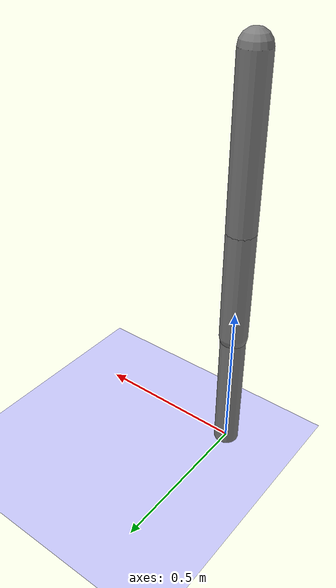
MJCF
<?xml version='1.0' encoding='UTF-8'?>
<mujoco model="robot_model">
  <worldbody>
    <light name="light" pos="0 -3 10" dir="0 0.5 -1" diffuse=".8 .8 .8" specular="0.1 0.1 0.1"/>
    <geom name="floor" type="plane" size="10.0 10.0 0.1" pos="0 0 0" rgba="0.8 0.8 1 1" contype="2" conaffinity="1"/>
    <body name="limb0" pos="0 0 0">
      <geom type="capsule" fromto="0 0 0 0 0 0.5568546386251432" size="0.04" density="978.6739756377735" contype="1" conaffinity="2"/>
      <site type="sphere" size="0.01" name="limb0_site0" pos="0 0 0.32125369712758917"/>
      <freejoint name="limb0_root"/>
      <body name="limb1" pos="0 0 0.32125369712758917">
        <geom type="capsule" fromto="0 0 0 0 0 0.2639757366326131" size="0.03303782304059255" density="616.6153958948047" contype="1" conaffinity="2"/>
        <site type="sphere" size="0.01" name="limb1_site0" pos="0 0 0.10105994540977413"/>
        <site type="sphere" size="0.01" name="limb1_site1" pos="0 0 0.10466555301443631"/>
        <body name="limb2" pos="0 0 0.10105994540977413">
          <geom type="capsule" fromto="0 0 0 0 0 0.35497082496756543" size="0.04434105952095914" density="887.1893638199223" contype="1" conaffinity="2"/>
          <site type="sphere" size="0.01" name="limb2_site0" pos="0 0 0.35479381956687406"/>
          <site type="sphere" size="0.01" name="limb2_site1" pos="0 0 0.1787849133331865"/>
          <body name="limb3" pos="0 0 0.35479381956687406">
            <geom type="capsule" fromto="0 0 0 0 0 0.478384237556315" size="0.04463053093235364" density="858.2525279654267" contype="1" conaffinity="2"/>
            <joint name="joint_limb2_limb3_0" type="hinge" axis="0 1 0" range="-104.61054347620718 104.61054347620718" damping="5.0"/>
          </body>
          <body name="limb4" pos="0 0 0.1787849133331865">
            <geom type="capsule" fromto="0 0 0 0 0 0.36676537835349476" size="0.037605996818648096" density="900.064348310711" contype="1" conaffinity="2"/>
            <joint name="joint_limb2_limb4_0" type="hinge" axis="0 1 0" range="-118.99053825008444 118.99053825008444" damping="5.0"/>
          </body>
          <joint name="joint_limb1_limb2_0" type="hinge" axis="0 1 0" range="-81.36051586401729 81.36051586401729" damping="5.0"/>
        </body>
        <body name="limb5" pos="0 0 0.10466555301443631">
          <geom type="capsule" fromto="0 0 0 0 0 0.2915545876731404" size="0.041653011905912966" density="980.8720051175214" contype="1" conaffinity="2"/>
          <joint name="joint_limb1_limb5_0" type="hinge" axis="0 1 0" range="-107.14717313770412 107.14717313770412" damping="5.0"/>
        </body>
        <joint name="joint_limb0_limb1_0" type="hinge" axis="0 1 0" range="-77.10370823669 77.10370823669" damping="5.0"/>
      </body>
    </body>
  </worldbody>
  <actuator>
    <position name="position_actuator_joint_limb0_limb1_0" joint="joint_limb0_limb1_0" gear="0.9730414856880761" inheritrange="1" kp="10.0"/>
    <position name="position_actuator_joint_limb1_limb2_0" joint="joint_limb1_limb2_0" gear="2.0" inheritrange="1" kp="10.0"/>
    <position name="position_actuator_joint_limb2_limb3_0" joint="joint_limb2_limb3_0" gear="1.5094011716228677" inheritrange="1" kp="10.0"/>
    <position name="position_actuator_joint_limb2_limb4_0" joint="joint_limb2_limb4_0" gear="1.5131639501074796" inheritrange="1" kp="10.0"/>
    <position name="position_actuator_joint_limb1_limb5_0" joint="joint_limb1_limb5_0" gear="0.7060054095369748" inheritrange="1" kp="10.0"/>
  </actuator>
</mujoco>
